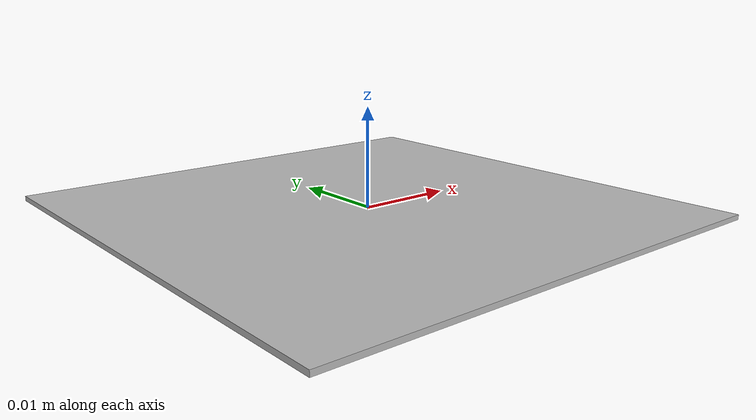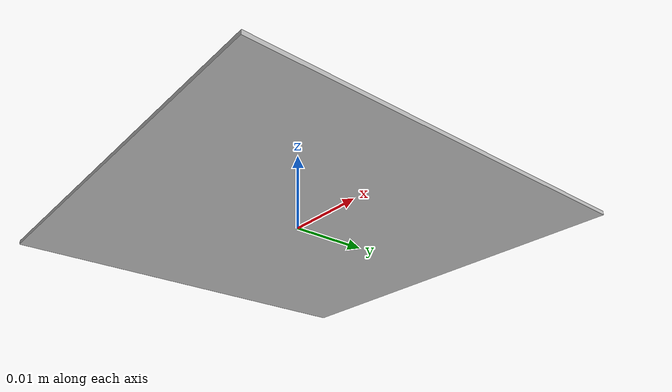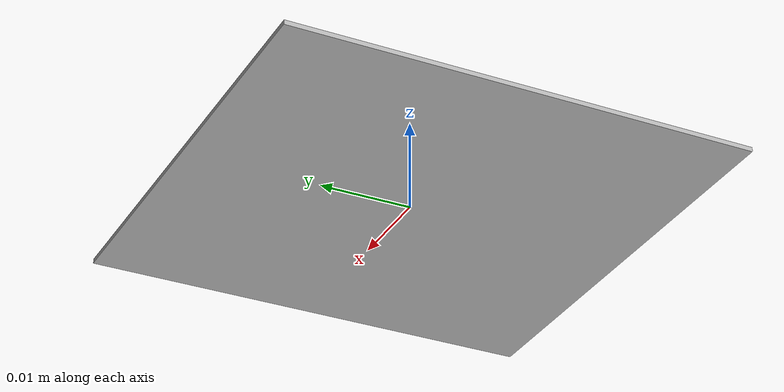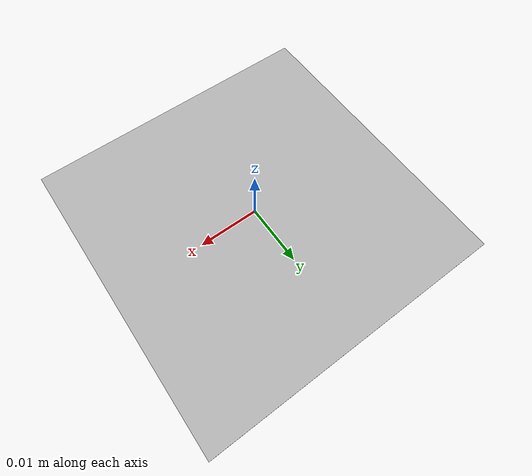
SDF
<?xml  version="1.0" ?>
<sdf version="1.5">

 <model name='reference_box'>
      <pose>0 0 0 0 -0 0</pose>
      <link name='link'>
        <inertial>
          <mass>1</mass>
          <inertia>
            <ixx>0.166667</ixx>
            <ixy>0</ixy>
            <ixz>0</ixz>
            <iyy>0.166667</iyy>
            <iyz>0</iyz>
            <izz>0.166667</izz>
          </inertia>
          <pose>0 0 0 0 -0 0</pose>
        </inertial>
        <collision name='collision'>
          <geometry>
            <box>
              <size>0.05 0.05 0.0005</size>
            </box>
          </geometry>
          <surface>
            <contact>
              <ode/>
            </contact>
            <bounce/>
            <friction>
              <torsional>
                <ode/>
              </torsional>
              <ode/>
            </friction>
          </surface>
          <max_contacts>10</max_contacts>
        </collision>
        <visual name='reference_box_mesh'>
          <geometry>
            <mesh>
                <uri>model://reference_box/model.dae</uri>
                <scale>0.025 0.025 0.00025</scale>
            </mesh>
          </geometry>
        </visual>
        <self_collide>0</self_collide>
        <enable_wind>0</enable_wind>
        <kinematic>0</kinematic>
      </link>
    </model>
    </sdf>
